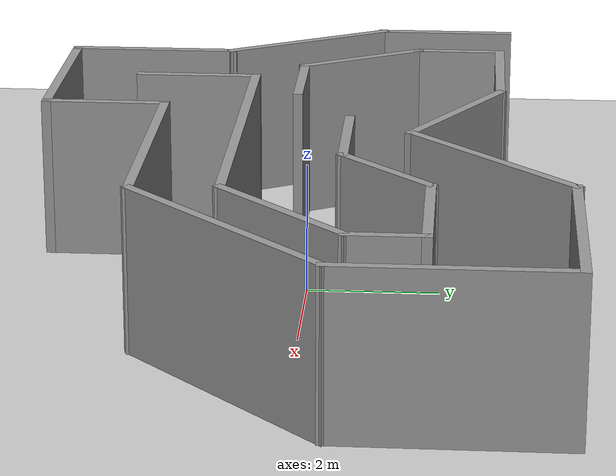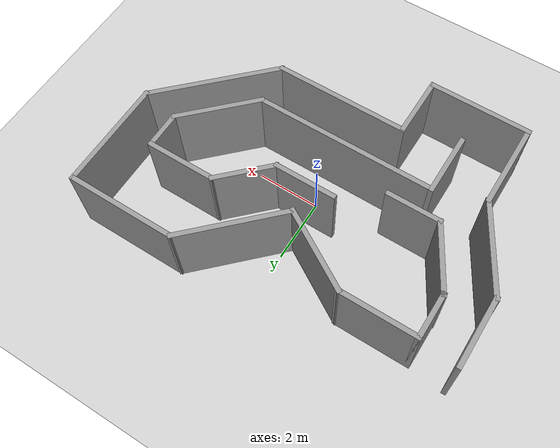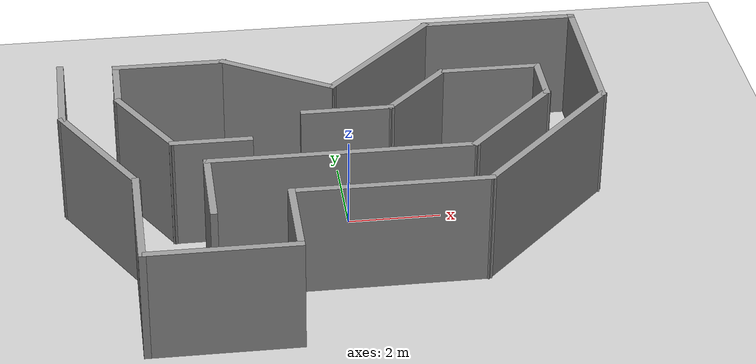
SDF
<sdf version="1.7">
 <world name="default">
  <light name="sun" type="directional">
   <pose>0 0 10 0 -0 0</pose>
   <diffuse>0.8 0.8 0.8 1</diffuse>
   <specular>0.2 0.2 0.2 1</specular>
   <attenuation>
    <range>1000</range>
    <constant>0.9</constant>
    <linear>0.01</linear>
    <quadratic>0.001</quadratic>
   </attenuation>
   <direction>-0.5 0.1 -0.9</direction>
   <spot><inner_angle>0</inner_angle><outer_angle>0</outer_angle><falloff>0</falloff></spot>
  </light>
  <model name="ground_plane">
   <static>1</static>
   <link name="link">
    <collision name="collision">
     <geometry><plane><normal>0 0 1</normal><size>100 100</size></plane></geometry>
     <surface><friction><ode><mu>100</mu><mu2>50</mu2></ode></friction></surface>
    </collision>
    <visual name="visual">
     <cast_shadows>0</cast_shadows>
     <geometry><plane><normal>0 0 1</normal><size>100 100</size></plane></geometry>
     <material>
      <script><uri>file://media/materials/scripts/gazebo.material</uri><name>Gazebo/Grey</name></script>
     </material>
    </visual>
   </link>
  </model>
  <gravity>0 0 -9.8</gravity>
  <magnetic_field>6e-06 2.3e-05 -4.2e-05</magnetic_field>
  <atmosphere type="adiabatic"/>
  <physics type="ode">
   <max_step_size>0.001</max_step_size>
   <real_time_factor>1</real_time_factor>
   <real_time_update_rate>1000</real_time_update_rate>
  </physics>
  <scene><ambient>0.4 0.4 0.4 1</ambient><background>0.7 0.7 0.7 1</background><shadows>1</shadows></scene>
  <audio><device>default</device></audio>
  <spherical_coordinates>
   <surface_model>EARTH_WGS84</surface_model>
   <latitude_deg>0</latitude_deg>
   <longitude_deg>0</longitude_deg>
   <elevation>0</elevation>
   <heading_deg>0</heading_deg>
  </spherical_coordinates>
  <model name="ww2.world">
   <pose>-0.211365 -0.104089 0 0 -0 0</pose>
   <link name="Wall_11">
    <collision name="Wall_11_Collision">
     <geometry><box><size>1.25 0.15 2.5</size></box></geometry>
     <pose>0 0 1.25 0 -0 0</pose>
    </collision>
    <visual name="Wall_11_Visual">
     <pose>0 0 1.25 0 -0 0</pose>
     <geometry><box><size>1.25 0.15 2.5</size></box></geometry>
     <material>
      <script><uri>file://media/materials/scripts/gazebo.material</uri><name>Gazebo/Grey</name></script>
      <ambient>1 1 1 1</ambient>
     </material>
     <meta><layer>0</layer></meta>
    </visual>
    <pose>4.58532 1.44956 0 0 -0 1.5708</pose>
   </link>
   <link name="Wall_12">
    <collision name="Wall_12_Collision">
     <geometry><box><size>2.25 0.15 2.5</size></box></geometry>
     <pose>0 0 1.25 0 -0 0</pose>
    </collision>
    <visual name="Wall_12_Visual">
     <pose>0 0 1.25 0 -0 0</pose>
     <geometry><box><size>2.25 0.15 2.5</size></box></geometry>
     <material>
      <script><uri>file://media/materials/scripts/gazebo.material</uri><name>Gazebo/Grey</name></script>
      <ambient>1 1 1 1</ambient>
     </material>
     <meta><layer>0</layer></meta>
    </visual>
    <pose>3.53532 1.99957 0 0 -0 3.14159</pose>
   </link>
   <link name="Wall_13">
    <collision name="Wall_13_Collision">
     <geometry><box><size>2 0.15 2.5</size></box></geometry>
     <pose>0 0 1.25 0 -0 0</pose>
    </collision>
    <visual name="Wall_13_Visual">
     <pose>0 0 1.25 0 -0 0</pose>
     <geometry><box><size>2 0.15 2.5</size></box></geometry>
     <material>
      <script><uri>file://media/materials/scripts/gazebo.material</uri><name>Gazebo/Grey</name></script>
      <ambient>1 1 1 1</ambient>
     </material>
     <meta><layer>0</layer></meta>
    </visual>
    <pose>1.83125 1.34549 0 0 -0 -2.35619</pose>
   </link>
   <link name="Wall_14">
    <collision name="Wall_14_Collision">
     <geometry><box><size>2 0.15 2.5</size></box></geometry>
     <pose>0 0 1.25 0 -0 0</pose>
    </collision>
    <visual name="Wall_14_Visual">
     <pose>0 0 1.25 0 -0 0</pose>
     <geometry><box><size>2 0.15 2.5</size></box></geometry>
     <material>
      <script><uri>file://media/materials/scripts/gazebo.material</uri><name>Gazebo/Grey</name></script>
      <ambient>1 1 1 1</ambient>
     </material>
     <meta><layer>0</layer></meta>
    </visual>
    <pose>0.252175 0.691417 0 0 -0 3.14159</pose>
   </link>
   <link name="Wall_16">
    <collision name="Wall_16_Collision">
     <geometry><box><size>1.75 0.15 2.5</size></box></geometry>
     <pose>0 0 1.25 0 -0 0</pose>
    </collision>
    <visual name="Wall_16_Visual">
     <pose>0 0 1.25 0 -0 0</pose>
     <geometry><box><size>1.75 0.15 2.5</size></box></geometry>
     <material>
      <script><uri>file://media/materials/scripts/gazebo.material</uri><name>Gazebo/Grey</name></script>
      <ambient>1 1 1 1</ambient>
     </material>
     <meta><layer>0</layer></meta>
    </visual>
    <pose>-2.71021 -0.188217 0 0 -0 3.14159</pose>
   </link>
   <link name="Wall_17">
    <collision name="Wall_17_Collision">
     <geometry><box><size>2.25 0.15 2.5</size></box></geometry>
     <pose>0 0 1.25 0 -0 0</pose>
    </collision>
    <visual name="Wall_17_Visual">
     <pose>0 0 1.25 0 -0 0</pose>
     <geometry><box><size>2.25 0.15 2.5</size></box></geometry>
     <material>
      <script><uri>file://media/materials/scripts/gazebo.material</uri><name>Gazebo/Grey</name></script>
      <ambient>1 1 1 1</ambient>
     </material>
     <meta><layer>0</layer></meta>
    </visual>
    <pose>-4.03521 0.72111 0 0 -0 2.0944</pose>
   </link>
   <link name="Wall_18">
    <collision name="Wall_18_Collision">
     <geometry><box><size>1.5 0.15 2.5</size></box></geometry>
     <pose>0 0 1.25 0 -0 0</pose>
    </collision>
    <visual name="Wall_18_Visual">
     <pose>0 0 1.25 0 -0 0</pose>
     <geometry><box><size>1.5 0.15 2.5</size></box></geometry>
     <material>
      <script><uri>file://media/materials/scripts/gazebo.material</uri><name>Gazebo/Grey</name></script>
      <ambient>1 1 1 1</ambient>
     </material>
     <meta><layer>0</layer></meta>
    </visual>
    <pose>-4.56021 2.30544 0 0 -0 1.5708</pose>
   </link>
   <link name="Wall_19">
    <collision name="Wall_19_Collision">
     <geometry><box><size>2.5 0.15 2.5</size></box></geometry>
     <pose>0 0 1.25 0 -0 0</pose>
    </collision>
    <visual name="Wall_19_Visual">
     <pose>0 0 1.25 0 -0 0</pose>
     <geometry><box><size>2.5 0.15 2.5</size></box></geometry>
     <material>
      <script><uri>file://media/materials/scripts/gazebo.material</uri><name>Gazebo/Grey</name></script>
      <ambient>1 1 1 1</ambient>
     </material>
     <meta><layer>0</layer></meta>
    </visual>
    <pose>-3.38521 2.98044 0 0 -0 0</pose>
   </link>
   <link name="Wall_20">
    <collision name="Wall_20_Collision">
     <geometry><box><size>2.76534 0.15 2.5</size></box></geometry>
     <pose>0 0 1.25 0 -0 0</pose>
    </collision>
    <visual name="Wall_20_Visual">
     <pose>0 0 1.25 0 -0 0</pose>
     <geometry><box><size>2.76534 0.15 2.5</size></box></geometry>
     <material>
      <script><uri>file://media/materials/scripts/gazebo.material</uri><name>Gazebo/Grey</name></script>
      <ambient>1 1 1 1</ambient>
     </material>
     <meta><layer>0</layer></meta>
    </visual>
    <pose>-1.08438 2.31523 0 0 -0 -0.533671</pose>
   </link>
   <link name="Wall_21">
    <collision name="Wall_21_Collision">
     <geometry><box><size>3.5 0.15 2.5</size></box></geometry>
     <pose>0 0 1.25 0 -0 0</pose>
    </collision>
    <visual name="Wall_21_Visual">
     <pose>0 0 1.25 0 -0 0</pose>
     <geometry><box><size>3.5 0.15 2.5</size></box></geometry>
     <material>
      <script><uri>file://media/materials/scripts/gazebo.material</uri><name>Gazebo/Grey</name></script>
      <ambient>1 1 1 1</ambient>
     </material>
     <meta><layer>0</layer></meta>
    </visual>
    <pose>1.22586 2.84963 0 0 -0 0.785398</pose>
   </link>
   <link name="Wall_24">
    <collision name="Wall_24_Collision">
     <geometry><box><size>3.5 0.15 2.5</size></box></geometry>
     <pose>0 0 1.25 0 -0 0</pose>
    </collision>
    <visual name="Wall_24_Visual">
     <pose>0 0 1.25 0 -0 0</pose>
     <geometry><box><size>3.5 0.15 2.5</size></box></geometry>
     <material>
      <script><uri>file://media/materials/scripts/gazebo.material</uri><name>Gazebo/Grey</name></script>
      <ambient>1 1 1 1</ambient>
     </material>
     <meta><layer>0</layer></meta>
    </visual>
    <pose>4.08526 4.03404 0 0 -0 0</pose>
   </link>
   <link name="Wall_25">
    <collision name="Wall_25_Collision">
     <geometry><box><size>3.5 0.15 2.5</size></box></geometry>
     <pose>0 0 1.25 0 -0 0</pose>
    </collision>
    <visual name="Wall_25_Visual">
     <pose>0 0 1.25 0 -0 0</pose>
     <geometry><box><size>3.5 0.15 2.5</size></box></geometry>
     <material>
      <script><uri>file://media/materials/scripts/gazebo.material</uri><name>Gazebo/Grey</name></script>
      <ambient>1 1 1 1</ambient>
     </material>
     <meta><layer>0</layer></meta>
    </visual>
    <pose>5.76026 2.35903 0 0 -0 -1.5708</pose>
   </link>
   <link name="Wall_27">
    <collision name="Wall_27_Collision">
     <geometry><box><size>4.25 0.15 2.5</size></box></geometry>
     <pose>0 0 1.25 0 -0 0</pose>
    </collision>
    <visual name="Wall_27_Visual">
     <pose>0 0 1.25 0 -0 0</pose>
     <geometry><box><size>4.25 0.15 2.5</size></box></geometry>
     <material>
      <script><uri>file://media/materials/scripts/gazebo.material</uri><name>Gazebo/Grey</name></script>
      <ambient>1 1 1 1</ambient>
     </material>
     <meta><layer>0</layer></meta>
    </visual>
    <pose>4.31069 -0.765533 0 0 -0 -2.35619</pose>
   </link>
   <link name="Wall_28">
    <collision name="Wall_28_Collision">
     <geometry><box><size>4.25 0.15 2.5</size></box></geometry>
     <pose>0 0 1.25 0 -0 0</pose>
    </collision>
    <visual name="Wall_28_Visual">
     <pose>0 0 1.25 0 -0 0</pose>
     <geometry><box><size>4.25 0.15 2.5</size></box></geometry>
     <material>
      <script><uri>file://media/materials/scripts/gazebo.material</uri><name>Gazebo/Grey</name></script>
      <ambient>1 1 1 1</ambient>
     </material>
     <meta><layer>0</layer></meta>
    </visual>
    <pose>0.811124 -2.2151 0 0 -0 3.14159</pose>
   </link>
   <link name="Wall_30">
    <collision name="Wall_30_Collision">
     <geometry><box><size>2 0.15 2.5</size></box></geometry>
     <pose>0 0 1.25 0 -0 0</pose>
    </collision>
    <visual name="Wall_30_Visual">
     <pose>0 0 1.25 0 -0 0</pose>
     <geometry><box><size>2 0.15 2.5</size></box></geometry>
     <material>
      <script><uri>file://media/materials/scripts/gazebo.material</uri><name>Gazebo/Grey</name></script>
      <ambient>1 1 1 1</ambient>
     </material>
     <meta><layer>0</layer></meta>
    </visual>
    <pose>-1.23888 -3.1401 0 0 -0 -1.5708</pose>
   </link>
   <link name="Wall_31">
    <collision name="Wall_31_Collision">
     <geometry><box><size>3.25 0.15 2.5</size></box></geometry>
     <pose>0 0 1.25 0 -0 0</pose>
    </collision>
    <visual name="Wall_31_Visual">
     <pose>0 0 1.25 0 -0 0</pose>
     <geometry><box><size>3.25 0.15 2.5</size></box></geometry>
     <material>
      <script><uri>file://media/materials/scripts/gazebo.material</uri><name>Gazebo/Grey</name></script>
      <ambient>1 1 1 1</ambient>
     </material>
     <meta><layer>0</layer></meta>
    </visual>
    <pose>-2.78888 -4.0651 0 0 -0 3.14159</pose>
   </link>
   <link name="Wall_32">
    <collision name="Wall_32_Collision">
     <geometry><box><size>2.75 0.15 2.5</size></box></geometry>
     <pose>0 0 1.25 0 -0 0</pose>
    </collision>
    <visual name="Wall_32_Visual">
     <pose>0 0 1.25 0 -0 0</pose>
     <geometry><box><size>2.75 0.15 2.5</size></box></geometry>
     <material>
      <script><uri>file://media/materials/scripts/gazebo.material</uri><name>Gazebo/Grey</name></script>
      <ambient>1 1 1 1</ambient>
     </material>
     <meta><layer>0</layer></meta>
    </visual>
    <pose>-4.33888 -2.7651 0 0 -0 1.5708</pose>
   </link>
   <link name="Wall_34">
    <collision name="Wall_34_Collision">
     <geometry><box><size>3 0.15 2.5</size></box></geometry>
     <pose>0 0 1.25 0 -0 0</pose>
    </collision>
    <visual name="Wall_34_Visual">
     <pose>0 0 1.25 0 -0 0</pose>
     <geometry><box><size>3 0.15 2.5</size></box></geometry>
     <material>
      <script><uri>file://media/materials/scripts/gazebo.material</uri><name>Gazebo/Grey</name></script>
      <ambient>1 1 1 1</ambient>
     </material>
     <meta><layer>0</layer></meta>
    </visual>
    <pose>-5.05138 -0.231016 0 0 -0 2.0944</pose>
   </link>
   <link name="Wall_35">
    <collision name="Wall_35_Collision">
     <geometry><box><size>2.25 0.15 2.5</size></box></geometry>
     <pose>0 0 1.25 0 -0 0</pose>
    </collision>
    <visual name="Wall_35_Visual">
     <pose>0 0 1.25 0 -0 0</pose>
     <geometry><box><size>2.25 0.15 2.5</size></box></geometry>
     <material>
      <script><uri>file://media/materials/scripts/gazebo.material</uri><name>Gazebo/Grey</name></script>
      <ambient>1 1 1 1</ambient>
     </material>
     <meta><layer>0</layer></meta>
    </visual>
    <pose>-5.76388 2.05307 0 0 -0 1.5708</pose>
   </link>
   <link name="Wall_5">
    <collision name="Wall_5_Collision">
     <geometry><box><size>2 0.15 2.5</size></box></geometry>
     <pose>0 0 1.25 0 -0 0</pose>
    </collision>
    <visual name="Wall_5_Visual">
     <pose>0 0 1.25 0 -0 0</pose>
     <geometry><box><size>2 0.15 2.5</size></box></geometry>
     <material>
      <script><uri>file://media/materials/scripts/gazebo.material</uri><name>Gazebo/Grey</name></script>
      <ambient>1 1 1 1</ambient>
     </material>
     <meta><layer>0</layer></meta>
    </visual>
    <pose>-2.85316 -1.86391 0 0 -0 1.5708</pose>
   </link>
   <link name="Wall_8">
    <collision name="Wall_8_Collision">
     <geometry><box><size>5.75 0.15 2.5</size></box></geometry>
     <pose>0 0 1.25 0 -0 0</pose>
    </collision>
    <visual name="Wall_8_Visual">
     <pose>0 0 1.25 0 -0 0</pose>
     <geometry><box><size>5.75 0.15 2.5</size></box></geometry>
     <material>
      <script><uri>file://media/materials/scripts/gazebo.material</uri><name>Gazebo/Grey</name></script>
      <ambient>1 1 1 1</ambient>
     </material>
     <meta><layer>0</layer></meta>
    </visual>
    <pose>-0.053155 -0.938913 0 0 -0 0</pose>
   </link>
   <link name="Wall_9">
    <collision name="Wall_9_Collision">
     <geometry><box><size>2.75 0.15 2.5</size></box></geometry>
     <pose>0 0 1.25 0 -0 0</pose>
    </collision>
    <visual name="Wall_9_Visual">
     <pose>0 0 1.25 0 -0 0</pose>
     <geometry><box><size>2.75 0.15 2.5</size></box></geometry>
     <material>
      <script><uri>file://media/materials/scripts/gazebo.material</uri><name>Gazebo/Grey</name></script>
      <ambient>1 1 1 1</ambient>
     </material>
     <meta><layer>0</layer></meta>
    </visual>
    <pose>3.66608 -0.019674 0 0 -0 0.785398</pose>
   </link>
   <static>1</static>
  </model>
 </world>
</sdf>
